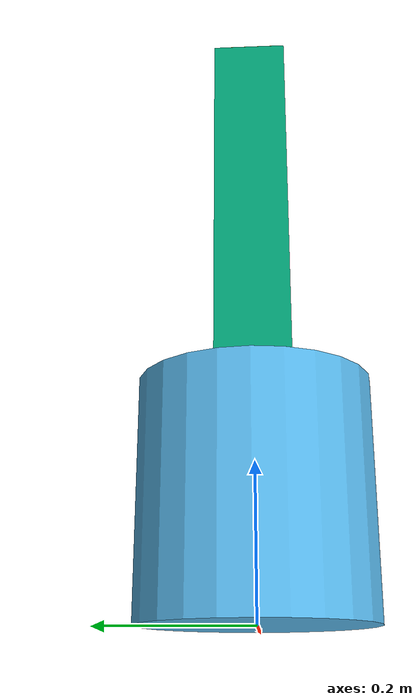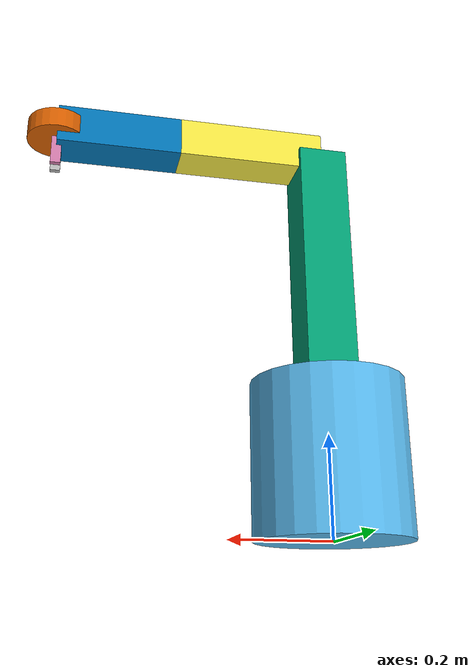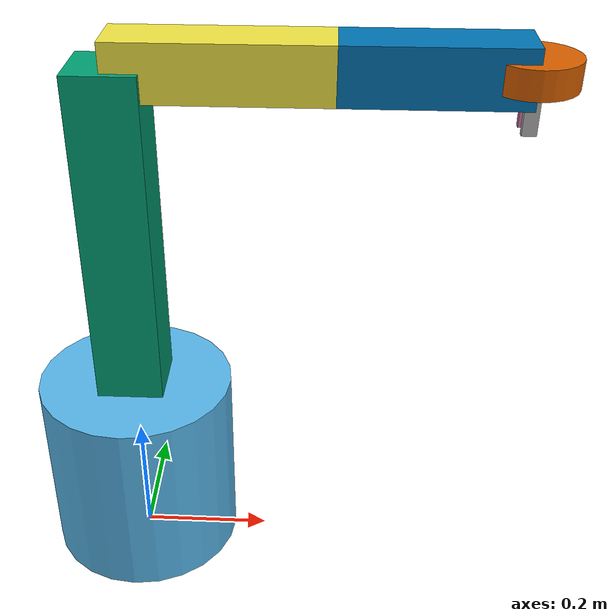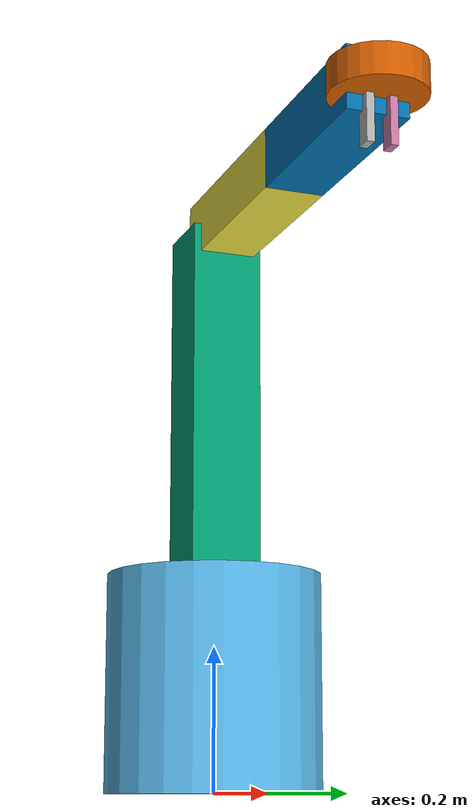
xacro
<?xml version="1.0"?>
<robot name="practise" xmlns:xacro="http://www.ros.org/wiki/xacro">
  <xacro:arg name="use_gazebo" default="false"/>
  <xacro:property name="use_gazebo" value="$(arg use_gazebo)"/>

  <!-- ========== world anchor ========== -->
  <link name="world"/>
  <joint name="world_to_base" type="fixed">
    <parent link="world"/>
    <child link="base_link"/>
    <origin xyz="0 0 0.15"/>
  </joint>

  <!-- ========== macros: inertia ========== -->
  <xacro:macro name="box_inertia" params="m x y z">
    <inertial>
      <mass value="${m}"/>
      <inertia ixx="${m*(y*y+z*z)/12}" ixy="0" ixz="0"
               iyy="${m*(x*x+z*z)/12}" iyz="0"
               izz="${m*(x*x+y*y)/12}"/>
    </inertial>
  </xacro:macro>

  <xacro:macro name="cylinder_inertia" params="m r h">
    <inertial>
      <mass value="${m}"/>
      <inertia ixx="${m*(3*r*r+h*h)/12}" ixy="0" ixz="0"
               iyy="${m*(3*r*r+h*h)/12}" iyz="0"
               izz="${m*r*r/2}"/>
    </inertial>
  </xacro:macro>

  <!-- ========== macros: links ========== -->
  <xacro:macro name="cylinder_link" params="Link_name L R M">
    <link name="${Link_name}">
      <visual>
        <geometry>
          <cylinder length="${L}" radius="${R}"/>
        </geometry>
      </visual>
      <collision>
        <geometry>
          <cylinder length="${L}" radius="${R}"/>
        </geometry>
      </collision>
      <xacro:cylinder_inertia m="${M}" r="${R}" h="${L}"/>
    </link>
  </xacro:macro>

  <xacro:macro name="box_link" params="Link_name X Y Z M">
    <link name="${Link_name}">
      <visual>
        <geometry>
          <box size="${X} ${Y} ${Z}"/>
        </geometry>
      </visual>
      <collision>
        <geometry>
          <box size="${X} ${Y} ${Z}"/>
        </geometry>
      </collision>
      <xacro:box_inertia m="${M}" x="${X}" y="${Y}" z="${Z}"/>
    </link>
  </xacro:macro>

  <xacro:macro name="box_link_finger" params="Link_name X Y Z M x y z">
    <link name="${Link_name}">
      <visual>
        <origin xyz="${x} ${y} ${z}"/>
        <geometry>
          <box size="${X} ${Y} ${Z}"/>
        </geometry>
      </visual>
      <collision>
        <origin xyz="${x} ${y} ${z}"/>
        <geometry>
          <box size="${X} ${Y} ${Z}"/>
        </geometry>
      </collision>
      <xacro:box_inertia m="${M}" x="${X}" y="${Y}" z="${Z}"/>
    </link>
  </xacro:macro>

  <!-- ========== link definitions ========== -->
  <xacro:cylinder_link Link_name="base_link" L="0.3" R="0.15" M="1"/>
  <xacro:box_link Link_name="vertical_rail" X="0.1" Y="0.1" Z="0.5" M="1"/>
  <xacro:box_link Link_name="upper_arm" X="0.3" Y="0.08" Z="0.08" M="1"/>
  <xacro:box_link Link_name="lower_arm" X="0.25" Y="0.08" Z="0.08" M="1"/>
  <xacro:cylinder_link Link_name="wrist_plate" L="0.04" R="0.06" M="0.5"/>

  <xacro:box_link_finger Link_name="left_finger"
                          X="0.02" Y="0.01" Z="0.06" M="0.05"
                          x="0" y="0" z="-0.03"/>

  <xacro:box_link_finger Link_name="right_finger"
                          X="0.02" Y="0.01" Z="0.06" M="0.05"
                          x="0" y="0" z="-0.03"/>

  <!-- ========== joint definitions ========== -->

  <joint name="joint1" type="fixed">
    <parent link="base_link"/>
    <child link="vertical_rail"/>
    <origin xyz="0 0 0.4"/>
  </joint>

  <joint name="shoulder" type="prismatic">
    <parent link="vertical_rail"/>
    <child link="upper_arm"/>
    <origin xyz="0.15 0 0.25"/>
    <axis xyz="0 0 1"/>
    <limit lower="-0.2" upper="0.2" effort="10" velocity="1.0"/>
  </joint>

  <joint name="elbow" type="revolute">
    <parent link="upper_arm"/>
    <child link="lower_arm"/>
    <origin xyz="0.275 0 0"/>
    <axis xyz="0 0 1"/>
    <limit lower="-2.5" upper="2.5" effort="10" velocity="1.0"/>
  </joint>

  <joint name="wrist" type="revolute">
    <parent link="lower_arm"/>
    <child link="wrist_plate"/>
    <origin xyz="0.125 0 0"/>
    <axis xyz="0 0 1"/>
    <limit lower="-3.14" upper="3.14" effort="5" velocity="1.0"/>
  </joint>

  <joint name="left_finger_joint" type="prismatic">
    <parent link="wrist_plate"/>
    <child link="left_finger"/>
    <origin xyz="0 0.015 -0.02"/>
    <axis xyz="0 1 0"/>
    <limit lower="-0.01" upper="0.02" effort="10" velocity="0.1"/>
  </joint>

  <joint name="right_finger_joint" type="prismatic">
    <parent link="wrist_plate"/>
    <child link="right_finger"/>
    <origin xyz="0 -0.015 -0.02"/>
    <axis xyz="0 1 0"/>
    <limit lower="-0.02" upper="0.01" effort="10" velocity="0.1"/>
  </joint>

  <!-- ========== ros2_control ========== -->
  <ros2_control name="practiseSystem" type="system">
    <hardware>
      <xacro:if value="${use_gazebo}">
        <plugin>gazebo_ros2_control/GazeboSystem</plugin>
      </xacro:if>
      <xacro:unless value="${use_gazebo}">
        <plugin>mock_components/GenericSystem</plugin>
      </xacro:unless>
    </hardware>

    <joint name="shoulder">
      <command_interface name="position"/>
      <state_interface name="position"/>
      <state_interface name="velocity"/>
    </joint>

    <joint name="elbow">
      <command_interface name="position"/>
      <state_interface name="position"/>
      <state_interface name="velocity"/>
    </joint>

    <joint name="wrist">
      <command_interface name="position"/>
      <state_interface name="position"/>
      <state_interface name="velocity"/>
    </joint>

    <joint name="left_finger_joint">
      <command_interface name="position"/>
      <state_interface name="position"/>
      <state_interface name="velocity"/>
    </joint>

    <joint name="right_finger_joint">
      <command_interface name="position"/>
      <state_interface name="position"/>
      <state_interface name="velocity"/>
    </joint>
  </ros2_control>
</robot>
